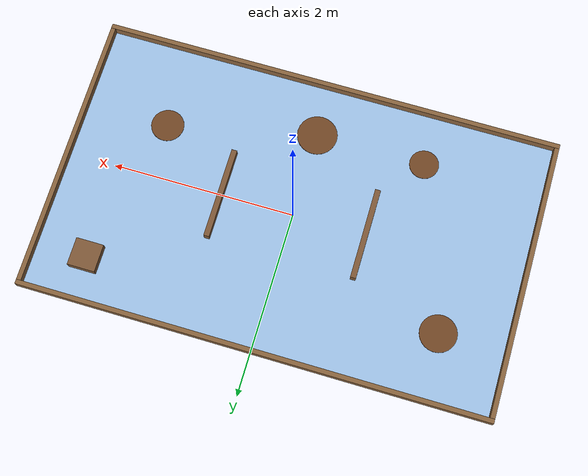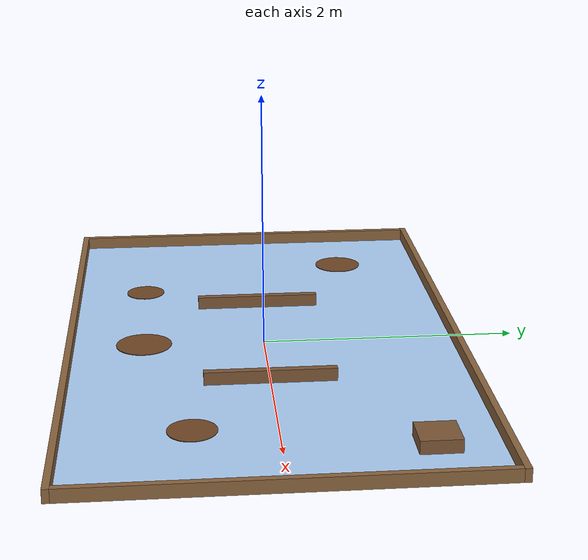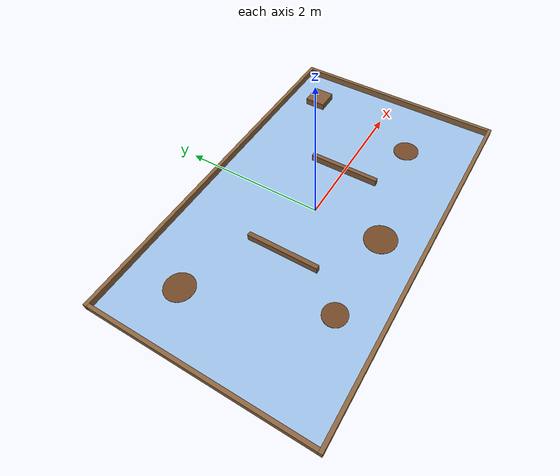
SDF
<?xml version="1.0" ?>
<sdf version="1.9">
  <world name="glass_obstacles">

    <gravity>0 0 0</gravity>

    <physics name="1ms" type="ignored">
      <max_step_size>0.001</max_step_size>
      <real_time_factor>1.0</real_time_factor>
    </physics>

    <plugin filename="ignition-gazebo-physics-system"
            name="ignition::gazebo::systems::Physics"/>
    <plugin filename="ignition-gazebo-user-commands-system"
            name="ignition::gazebo::systems::UserCommands"/>
    <plugin filename="ignition-gazebo-scene-broadcaster-system"
            name="ignition::gazebo::systems::SceneBroadcaster"/>
    <plugin filename="ignition-gazebo-sensors-system"
            name="ignition::gazebo::systems::Sensors">
      <render_engine>ogre2</render_engine>
    </plugin>

    <scene>
      <ambient>0.5 0.5 0.6 1</ambient>
      <background>0.85 0.90 0.95 1</background>
      <grid>false</grid>
    </scene>

    <light type="directional" name="sun">
      <cast_shadows>true</cast_shadows>
      <pose>0 0 5 0 0 0</pose>
      <diffuse>0.9 0.9 0.9 1</diffuse>
      <specular>0.2 0.2 0.2 1</specular>
      <direction>-0.3 0.3 -1.0</direction>
    </light>

    <!-- ============================================================
         Glass surface (5m x 3m, slightly translucent blue)
         ============================================================ -->
    <model name="glass_surface">
      <static>true</static>
      <pose>0 0 0 0 0 0</pose>
      <link name="surface_link">
        <visual name="surface_visual">
          <geometry>
            <box><size>5.0 3.0 0.01</size></box>
          </geometry>
          <material>
            <ambient>0.15 0.35 0.55 0.45</ambient>
            <diffuse>0.25 0.55 0.85 0.45</diffuse>
            <specular>0.6 0.7 0.9 1</specular>
            <emissive>0.05 0.10 0.15 1</emissive>
          </material>
        </visual>
        <collision name="surface_collision">
          <geometry>
            <box><size>5.0 3.0 0.01</size></box>
          </geometry>
        </collision>
      </link>
    </model>

    <model name="frame_bottom">
      <static>true</static>
      <pose>0 -1.525 0.055 0 0 0</pose>
      <link name="link">
        <visual name="v">
          <geometry><box><size>5.10 0.05 0.10</size></box></geometry>
          <material>
            <ambient>0.35 0.25 0.18 1</ambient>
            <diffuse>0.55 0.40 0.25 1</diffuse>
          </material>
        </visual>
        <collision name="c">
          <geometry><box><size>5.10 0.05 0.10</size></box></geometry>
        </collision>
      </link>
    </model>

    <model name="frame_top">
      <static>true</static>
      <pose>0 1.525 0.055 0 0 0</pose>
      <link name="link">
        <visual name="v">
          <geometry><box><size>5.10 0.05 0.10</size></box></geometry>
          <material>
            <ambient>0.35 0.25 0.18 1</ambient>
            <diffuse>0.55 0.40 0.25 1</diffuse>
          </material>
        </visual>
        <collision name="c">
          <geometry><box><size>5.10 0.05 0.10</size></box></geometry>
        </collision>
      </link>
    </model>

    <model name="frame_left">
      <static>true</static>
      <pose>-2.525 0 0.055 0 0 0</pose>
      <link name="link">
        <visual name="v">
          <geometry><box><size>0.05 3.00 0.10</size></box></geometry>
          <material>
            <ambient>0.35 0.25 0.18 1</ambient>
            <diffuse>0.55 0.40 0.25 1</diffuse>
          </material>
        </visual>
        <collision name="c">
          <geometry><box><size>0.05 3.00 0.10</size></box></geometry>
        </collision>
      </link>
    </model>

    <model name="frame_right">
      <static>true</static>
      <pose>2.525 0 0.055 0 0 0</pose>
      <link name="link">
        <visual name="v">
          <geometry><box><size>0.05 3.00 0.10</size></box></geometry>
          <material>
            <ambient>0.35 0.25 0.18 1</ambient>
            <diffuse>0.55 0.40 0.25 1</diffuse>
          </material>
        </visual>
        <collision name="c">
          <geometry><box><size>0.05 3.00 0.10</size></box></geometry>
        </collision>
      </link>
    </model>

    <!-- Vertical mullion at x = -0.80, spans y = -0.50 .. +0.50 (1.0 m) -->
    <model name="mullion_left">
      <static>true</static>
      <pose>-0.80 0.0 0.055 0 0 0</pose>
      <link name="link">
        <visual name="v">
          <geometry><box><size>0.06 1.00 0.10</size></box></geometry>
          <material>
            <ambient>0.30 0.20 0.15 1</ambient>
            <diffuse>0.50 0.35 0.22 1</diffuse>
          </material>
        </visual>
        <collision name="c">
          <geometry><box><size>0.06 1.00 0.10</size></box></geometry>
        </collision>
      </link>
    </model>

    <!-- Vertical mullion at x = +0.80, spans y = -0.50 .. +0.50 (1.0 m) -->
    <model name="mullion_right">
      <static>true</static>
      <pose>0.80 0.0 0.055 0 0 0</pose>
      <link name="link">
        <visual name="v">
          <geometry><box><size>0.06 1.00 0.10</size></box></geometry>
          <material>
            <ambient>0.30 0.20 0.15 1</ambient>
            <diffuse>0.50 0.35 0.22 1</diffuse>
          </material>
        </visual>
        <collision name="c">
          <geometry><box><size>0.06 1.00 0.10</size></box></geometry>
        </collision>
      </link>
    </model>

    <!-- NE corner obstacle: 0.30 x 0.30 box at (1.95, 1.05).
         Tests Nav2 recovery behaviour when a corner waypoint is occupied. -->
    <model name="corner_obstacle_ne">
      <static>true</static>
      <pose>1.95 1.05 0.055 0 0 0</pose>
      <link name="link">
        <visual name="v">
          <geometry><box><size>0.30 0.30 0.10</size></box></geometry>
          <material>
            <ambient>0.30 0.20 0.15 1</ambient>
            <diffuse>0.50 0.35 0.22 1</diffuse>
          </material>
        </visual>
        <collision name="c">
          <geometry><box><size>0.30 0.30 0.10</size></box></geometry>
        </collision>
      </link>
    </model>

    <model name="dirt_01">
      <static>true</static>
      <pose>-1.80 0.80 0.011 0 0 0</pose>
      <link name="link">
        <visual name="v">
          <geometry><cylinder><radius>0.20</radius><length>0.005</length></cylinder></geometry>
          <material>
            <ambient>0.30 0.18 0.10 1</ambient>
            <diffuse>0.45 0.28 0.15 1</diffuse>
          </material>
        </visual>
      </link>
    </model>

    <model name="dirt_02">
      <static>true</static>
      <pose>0.00 -0.95 0.011 0 0 0</pose>
      <link name="link">
        <visual name="v">
          <geometry><cylinder><radius>0.22</radius><length>0.005</length></cylinder></geometry>
          <material>
            <ambient>0.30 0.18 0.10 1</ambient>
            <diffuse>0.45 0.28 0.15 1</diffuse>
          </material>
        </visual>
      </link>
    </model>

    <model name="dirt_03">
      <static>true</static>
      <pose>1.60 -0.60 0.011 0 0 0</pose>
      <link name="link">
        <visual name="v">
          <geometry><cylinder><radius>0.18</radius><length>0.005</length></cylinder></geometry>
          <material>
            <ambient>0.30 0.18 0.10 1</ambient>
            <diffuse>0.45 0.28 0.15 1</diffuse>
          </material>
        </visual>
      </link>
    </model>

    <model name="dirt_04">
      <static>true</static>
      <pose>-1.20 -0.95 0.011 0 0 0</pose>
      <link name="link">
        <visual name="v">
          <geometry><cylinder><radius>0.16</radius><length>0.005</length></cylinder></geometry>
          <material>
            <ambient>0.30 0.18 0.10 1</ambient>
            <diffuse>0.45 0.28 0.15 1</diffuse>
          </material>
        </visual>
      </link>
    </model>

  </world>
</sdf>
